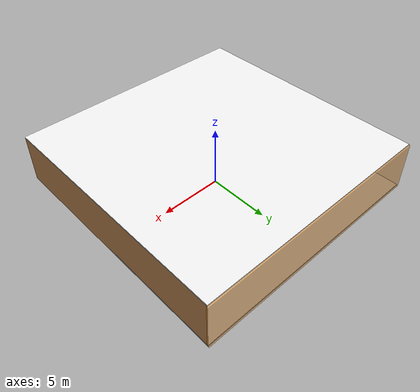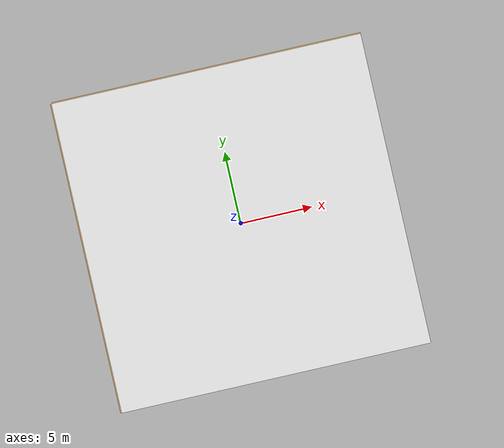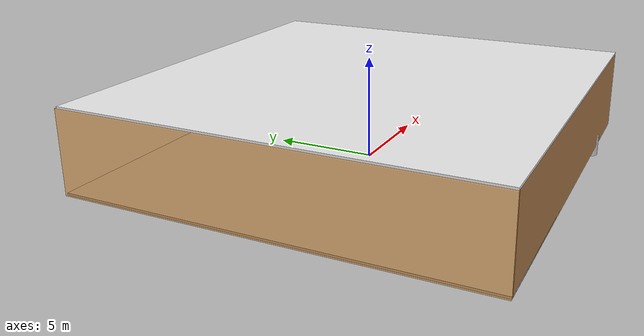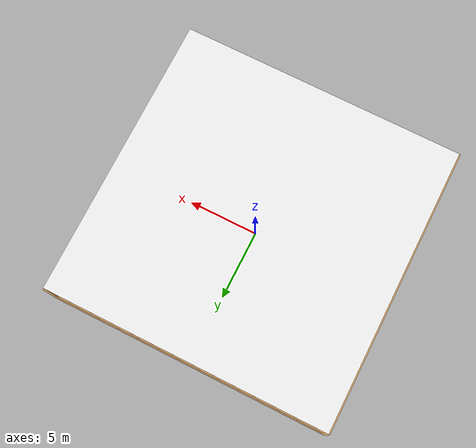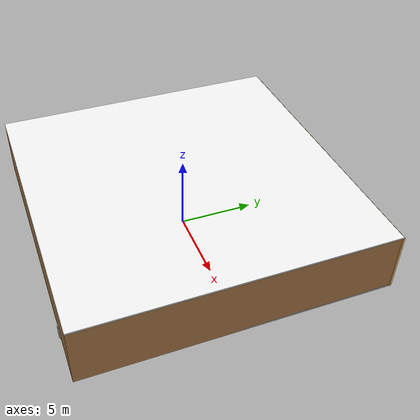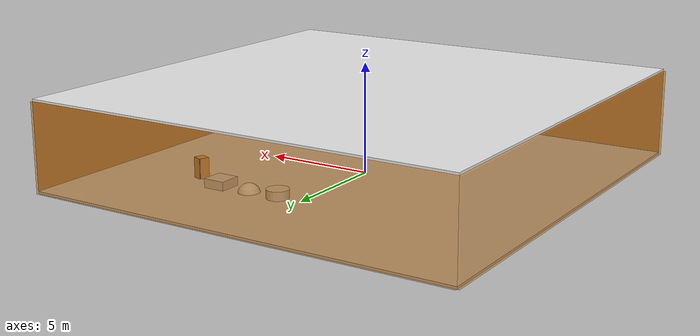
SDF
<sdf version="1.4">
 <world name="default">
  <physics type="ode">
   <max_step_size>0.001</max_step_size>
   <real_time_factor>1</real_time_factor>
   <real_time_update_rate>1000</real_time_update_rate>
   <gravity>0 0 -9.8</gravity>
  </physics>
  <scene><ambient>0.4 0.4 0.4 1</ambient><background>0.7 0.7 0.7 1</background><shadows>1</shadows></scene>
  <model name="Surrounding">
   <static>1</static>
   <link name="Ceiling">
    <collision name="Ceiling_Collision"><geometry><box><size>20 20 0.1</size></box></geometry></collision>
    <visual name="Ceiling_Visual">
     <geometry><box><size>20 20 0.1</size></box></geometry>
     <material>
      <script><uri>file://media/materials/scripts/gazebo.material</uri><name>Gazebo/WhiteGlow</name></script>
     </material>
    </visual>
    <pose>0 0 4.05 0 0 0</pose>
   </link>
   <link name="Wall_South">
    <collision name="Wall_South_Collision">
     <geometry><box><size>20 0 4</size></box></geometry>
     <pose>0 0 2 0 -0 0</pose>
    </collision>
    <visual name="Wall_South_Visual">
     <pose>0 0 2 0 -0 0</pose>
     <geometry><box><size>20 0 4</size></box></geometry>
     <material>
      <script><uri>file://media/materials/scripts/gazebo.material</uri><name>Gazebo/WoodFloor</name></script>
     </material>
    </visual>
    <velocity_decay><linear>0</linear><angular>0</angular></velocity_decay>
    <pose>0 -10 0 0 -0 0</pose>
   </link>
   <link name="Wall_East">
    <collision name="Wall_21_Collision">
     <geometry><box><size>20 0 4</size></box></geometry>
     <pose>0 0 2 0 -0 0</pose>
    </collision>
    <visual name="Wall_21_Visual">
     <pose>0 0 2 0 -0 0</pose>
     <geometry><box><size>20 0 4</size></box></geometry>
     <material>
      <script><uri>file://media/materials/scripts/gazebo.material</uri><name>Gazebo/WoodPallet</name></script>
     </material>
    </visual>
    <velocity_decay><linear>0</linear><angular>0</angular></velocity_decay>
    <pose>10 0 0 0 -0 1.5708</pose>
   </link>
   <link name="Wall_North">
    <collision name="Wall_22_Collision">
     <geometry><box><size>20 0.2 4</size></box></geometry>
     <pose>0 0 2 0 -0 0</pose>
    </collision>
    <visual name="Wall_22_Visual">
     <pose>0 0 2 0 -0 0</pose>
     <geometry><box><size>20 0.2 4</size></box></geometry>
     <material>
      <script>
       <uri>file://media/materials/scripts/gazebo.material</uri>
       <name>Gazebo/OrangeTransparent</name>
      </script>
     </material>
    </visual>
    <velocity_decay><linear>0</linear><angular>0</angular></velocity_decay>
    <pose>0 10 0 0 -0 0</pose>
   </link>
   <link name="Wall_West">
    <collision name="Wall_23_Collision">
     <geometry><box><size>20 0.2 4</size></box></geometry>
     <pose>0 0 2 0 -0 0</pose>
    </collision>
    <visual name="Wall_23_Visual">
     <pose>0 0 2 0 -0 0</pose>
     <geometry><box><size>20 0.2 4</size></box></geometry>
     <material>
      <script>
       <uri>file://media/materials/scripts/gazebo.material</uri>
       <name>Gazebo/OrangeTransparent</name>
      </script>
     </material>
    </visual>
    <velocity_decay><linear>0</linear><angular>0</angular></velocity_decay>
    <pose>-10 0 0 0 0 -1.5708</pose>
   </link>
   <link name="Ground_link">
    <collision name="collision">
     <pose>0 0 .05 0 -0 0</pose>
     <geometry><box><size>20 20 0.1</size></box></geometry>
    </collision>
    <visual name="visual">
     <pose>0 0 .05 0 -0 0</pose>
     <geometry><box><size>20 20 0.1</size></box></geometry>
     <material>
      <script><uri>file://media/materials/scripts/gazebo.material</uri><name>Gazebo/LightOn</name></script>
     </material>
    </visual>
   </link>
   <static>1</static>
  </model>
  <spherical_coordinates>
   <surface_model>EARTH_WGS84</surface_model>
   <latitude_deg>0</latitude_deg>
   <longitude_deg>0</longitude_deg>
   <elevation>0</elevation>
   <heading_deg>0</heading_deg>
  </spherical_coordinates>
  <light name="lightball_0" type="diffuse">
   <diffuse>0.8 0.8 0.8 1</diffuse>
   <specular>0.2 0.2 0.2 1</specular>
   <attenuation>
    <range>100</range>
    <constant>0.7</constant>
    <linear>0.01</linear>
    <quadratic>0.001</quadratic>
   </attenuation>
   <direction>-0.5 0.1 -0.9</direction>
   <pose>-4.39172250037 -7.70232587138 3.74917894325 0 0 0</pose>
  </light>
  <light name="lightball_1" type="diffuse">
   <diffuse>0.8 0.8 0.8 1</diffuse>
   <specular>0.2 0.2 0.2 1</specular>
   <attenuation>
    <range>100</range>
    <constant>0.7</constant>
    <linear>0.01</linear>
    <quadratic>0.001</quadratic>
   </attenuation>
   <direction>-0.5 0.1 -0.9</direction>
   <pose>6.38753178483 0.751530320817 1.67729413099 0 0 0</pose>
  </light>
  <light name="lightball_2" type="diffuse">
   <diffuse>0.8 0.8 0.8 1</diffuse>
   <specular>0.2 0.2 0.2 1</specular>
   <attenuation>
    <range>100</range>
    <constant>0.7</constant>
    <linear>0.01</linear>
    <quadratic>0.001</quadratic>
   </attenuation>
   <direction>-0.5 0.1 -0.9</direction>
   <pose>0.0733439727762 -1.68349061125 1.43301921546 0 0 0</pose>
  </light>
  <light name="lightball_3" type="diffuse">
   <diffuse>0.8 0.8 0.8 1</diffuse>
   <specular>0.2 0.2 0.2 1</specular>
   <attenuation>
    <range>100</range>
    <constant>0.7</constant>
    <linear>0.01</linear>
    <quadratic>0.001</quadratic>
   </attenuation>
   <direction>-0.5 0.1 -0.9</direction>
   <pose>-6.5131731098 8.36145233827 2.15097554808 0 0 0</pose>
  </light>
  <light name="lightball_4" type="diffuse">
   <diffuse>0.8 0.8 0.8 1</diffuse>
   <specular>0.2 0.2 0.2 1</specular>
   <attenuation>
    <range>100</range>
    <constant>0.7</constant>
    <linear>0.01</linear>
    <quadratic>0.001</quadratic>
   </attenuation>
   <direction>-0.5 0.1 -0.9</direction>
   <pose>-3.96265437378 -2.26395844768 3.70555610335 0 0 0</pose>
  </light>
  <light name="lightball_5" type="diffuse">
   <diffuse>0.8 0.8 0.8 1</diffuse>
   <specular>0.2 0.2 0.2 1</specular>
   <attenuation>
    <range>100</range>
    <constant>0.7</constant>
    <linear>0.01</linear>
    <quadratic>0.001</quadratic>
   </attenuation>
   <direction>-0.5 0.1 -0.9</direction>
   <pose>-5.86206790513 7.43319920885 3.87303764802 0 0 0</pose>
  </light>
  <include>
   <uri>model://textured_shapes</uri>
   <pose>2.43359535042 5.32547778503 0 0 0 1.57241694157</pose>
  </include>
  <include><uri>model://cabinet</uri><pose>5.495957471 4.70414442687 0 0 0 1.21845862011</pose></include>
  <include>
   <uri>model://textured_shapes</uri>
   <pose>7.16790681678 -8.33766187186 0 0 0 2.52780516483</pose>
  </include>
 </world>
</sdf>

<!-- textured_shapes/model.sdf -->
<sdf version="1.6">
  <model name="textured_shapes">
    <pose>0 0 0.5 0 0 0</pose>
    <link name="box">
      <pose>0 -1.5 0 0 0 0</pose>
      <collision name="collision">
        <geometry>
          <box>
            <size>1 1 1</size>
          </box>
        </geometry>
      </collision>
      <visual name="visual">
        <geometry>
          <box>
            <size>1 1 1</size>
          </box>
        </geometry>
        <material>
          <script>
            <uri>model://../model_source/models/textured_shapes/materials/scripts</uri>
            <uri>model://../model_source/models/textured_shapes/materials/textures</uri>
            <name>TexturedShape/Squares</name>
          </script>
        </material>
      </visual>
    </link>
    <link name="sphere">
      <collision name="collision">
        <geometry>
          <sphere>
            <radius>0.5</radius>
          </sphere>
        </geometry>
      </collision>
      <visual name="visual">
        <geometry>
          <sphere>
            <radius>0.5</radius>
          </sphere>
        </geometry>
        <material>
          <script>
            <uri>model://../model_source/models/textured_shapes/materials/scripts</uri>
            <uri>model://../model_source/models/textured_shapes/materials/textures</uri>
            <name>TexturedShape/Squares</name>
          </script>
        </material>
      </visual>
    </link>
    <link name="cylinder">
      <pose>0 1.5 0 0 0 0</pose>
      <collision name="collision">
        <geometry>
          <cylinder>
            <radius>0.5</radius>
            <length>1</length>
          </cylinder>
        </geometry>
      </collision>
      <visual name="visual">
        <geometry>
          <cylinder>
            <radius>0.5</radius>
            <length>1</length>
          </cylinder>
        </geometry>
        <material>
          <script>
            <uri>model://../model_source/models/textured_shapes/materials/scripts</uri>
            <uri>model://../model_source/models/textured_shapes/materials/textures</uri>
            <name>TexturedShape/Squares</name>
          </script>
        </material>
      </visual>
    </link>
  </model>
</sdf>

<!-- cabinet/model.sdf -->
<sdf version="1.5">
  <model name="cabinet">
    <static>true</static>
    <link name="cabinet_bottom_plate">
      <inertial>
        <pose>0 0 -1 0 0 0</pose>
        <inertia>
          <ixx>2.050000</ixx>
          <ixy>0</ixy>
          <ixz>0</ixz>
          <iyy>2.050000</iyy>
          <iyz>0</iyz>
          <izz>2.050000</izz>
        </inertia>
        <mass>25.000000</mass>
      </inertial>
      <collision name="cabinet_bottom_plate_geom">
        <pose>0 0 0.010000 0 0 0</pose>
        <geometry>
          <box>
            <size>0.450000 0.450000 0.020000</size>
          </box>
        </geometry>
      </collision>
      <visual name="cabinet_bottom_plate_geom_visual">
        <pose>0 0 0.010000 0 0 0</pose>
        <geometry>
          <box>
            <size>0.450000 0.450000 0.020000</size>
          </box>
        </geometry>
        <material>
          <script>
            <uri>model://media/materials/scripts/gazebo.material</uri>
            <name>Gazebo/Wood</name>
          </script>
        </material>
      </visual>
      <collision name="cabinet_bottom_plate_geom_cabinet_back_plate">
        <pose>0.235000 0 0.510000 0 0 0</pose>
        <geometry>
          <box>
            <size>0.020000 0.450000 1.020000</size>
          </box>
        </geometry>
      </collision>
      <visual name="cabinet_bottom_plate_geom_cabinet_back_plate_visual">
        <pose>0.235000 0 0.510000 0 0 0</pose>
        <geometry>
          <box>
            <size>0.020000 0.450000 1.020000</size>
          </box>
        </geometry>
        <material>
          <script>
            <uri>model://media/materials/scripts/gazebo.material</uri>
            <name>Gazebo/Wood</name>
          </script>
        </material>
      </visual>
      <collision name="cabinet_bottom_plate_geom_cabinet_left_plate">
        <pose>0 0.235000 0.510000 0 0 0</pose>
        <geometry>
          <box>
            <size>0.450000 0.020000 1.020000</size>
          </box>
        </geometry>
      </collision>
      <visual name="cabinet_bottom_plate_geom_cabinet_left_plate_visual">
        <pose>0 0.235000 0.510000 0 0 0</pose>
        <geometry>
          <box>
            <size>0.450000 0.020000 1.020000</size>
          </box>
        </geometry>
        <material>
          <script>
            <uri>model://media/materials/scripts/gazebo.material</uri>
            <name>Gazebo/Wood</name>
          </script>
        </material>
      </visual>
      <collision name="cabinet_bottom_plate_geom_cabinet_middle_plate">
        <pose>0 0 0.510000 0 0 0</pose>
        <geometry>
          <box>
            <size>0.450000 0.450000 0.020000</size>
          </box>
        </geometry>
      </collision>
      <visual name="cabinet_bottom_plate_geom_cabinet_middle_plate_visual">
        <pose>0 0 0.510000 0 0 0</pose>
        <geometry>
          <box>
            <size>0.450000 0.450000 0.020000</size>
          </box>
        </geometry>
        <material>
          <script>
            <uri>model://media/materials/scripts/gazebo.material</uri>
            <name>Gazebo/Wood</name>
          </script>
        </material>
      </visual>
      <collision name="cabinet_bottom_plate_geom_cabinet_right_plate">
        <pose>0 -0.235000 0.510000 0 0 0</pose>
        <geometry>
          <box>
            <size>0.450000 0.020000 1.020000</size>
          </box>
        </geometry>
      </collision>
      <visual name="cabinet_bottom_plate_geom_cabinet_right_plate_visual">
        <pose>0 -0.235000 0.510000 0 0 0</pose>
        <geometry>
          <box>
            <size>0.450000 0.020000 1.020000</size>
          </box>
        </geometry>
        <material>
          <script>
            <uri>model://media/materials/scripts/gazebo.material</uri>
            <name>Gazebo/Wood</name>
          </script>
        </material>
      </visual>
      <collision name="cabinet_bottom_plate_geom_cabinet_top_plate">
        <pose>0 0 1.010000 0 0 0</pose>
        <geometry>
          <box>
            <size>0.450000 0.450000 0.020000</size>
          </box>
        </geometry>
      </collision>
      <visual name="cabinet_bottom_plate_geom_cabinet_top_plate_visual">
        <pose>0 0 1.010000 0 0 0</pose>
        <geometry>
          <box>
            <size>0.450000 0.450000 0.020000</size>
          </box>
        </geometry>
        <material>
          <script>
            <uri>model://media/materials/scripts/gazebo.material</uri>
            <name>Gazebo/Wood</name>
          </script>
        </material>
      </visual>
    </link>
  </model>
</sdf>
